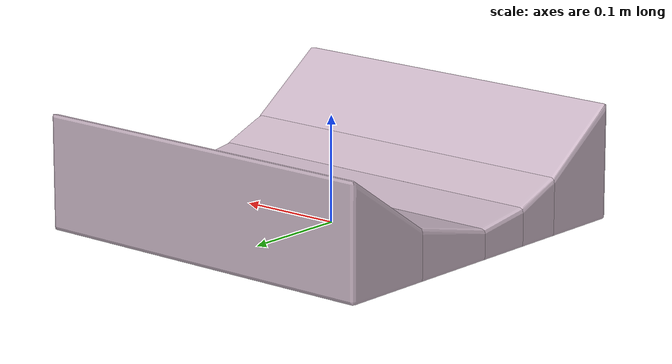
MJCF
<mujoco model="plane_curved_inverse">
  <asset>
    <mesh file="meshes/plane_surfaces/curved_inverse_surface.obj" name="plane_curved_inverse_visual_mesh"/>
    <mesh file="meshes/plane_surfaces/curved_inverse_decomp/curved_inverse_part_00.obj" name="plane_curved_inverse_col_00"/>
    <mesh file="meshes/plane_surfaces/curved_inverse_decomp/curved_inverse_part_01.obj" name="plane_curved_inverse_col_01"/>
    <mesh file="meshes/plane_surfaces/curved_inverse_decomp/curved_inverse_part_02.obj" name="plane_curved_inverse_col_02"/>
    <mesh file="meshes/plane_surfaces/curved_inverse_decomp/curved_inverse_part_03.obj" name="plane_curved_inverse_col_03"/>
    <mesh file="meshes/plane_surfaces/curved_inverse_decomp/curved_inverse_part_04.obj" name="plane_curved_inverse_col_04"/>
  </asset>
  <worldbody>
    <body>
      <body name="object">
        <geom mesh="plane_curved_inverse_visual_mesh" type="mesh"
              solimp="0.998 0.998 0.001" solref="0.001 1"
              density="1e-8" rgba="0.80 0.72 0.78 1"
              contype="0" conaffinity="0" group="1"/>
        <geom mesh="plane_curved_inverse_col_00" type="mesh"
              solimp="0.998 0.998 0.001" solref="0.001 1"
              density="3.125" friction="0.95 0.3 0.1" rgba="0.80 0.72 0.78 1"
              contype="1" conaffinity="1" group="0"/>
        <geom mesh="plane_curved_inverse_col_01" type="mesh"
              solimp="0.998 0.998 0.001" solref="0.001 1"
              density="3.125" friction="0.95 0.3 0.1" rgba="0.80 0.72 0.78 1"
              contype="1" conaffinity="1" group="0"/>
        <geom mesh="plane_curved_inverse_col_02" type="mesh"
              solimp="0.998 0.998 0.001" solref="0.001 1"
              density="3.125" friction="0.95 0.3 0.1" rgba="0.80 0.72 0.78 1"
              contype="1" conaffinity="1" group="0"/>
        <geom mesh="plane_curved_inverse_col_03" type="mesh"
              solimp="0.998 0.998 0.001" solref="0.001 1"
              density="3.125" friction="0.95 0.3 0.1" rgba="0.80 0.72 0.78 1"
              contype="1" conaffinity="1" group="0"/>
        <geom mesh="plane_curved_inverse_col_04" type="mesh"
              solimp="0.998 0.998 0.001" solref="0.001 1"
              density="3.125" friction="0.95 0.3 0.1" rgba="0.80 0.72 0.78 1"
              contype="1" conaffinity="1" group="0"/>
      </body>
      <site rgba="0 0 0 0" size="0.005" pos="0 0 0" name="bottom_site"/>
      <site rgba="0 0 0 0" size="0.005" pos="0 0 0.105" name="top_site"/>
      <site rgba="0 0 0 0" size="0.005" pos="0.175 0.175 0" name="horizontal_radius_site"/>
    </body>
  </worldbody>
</mujoco>
